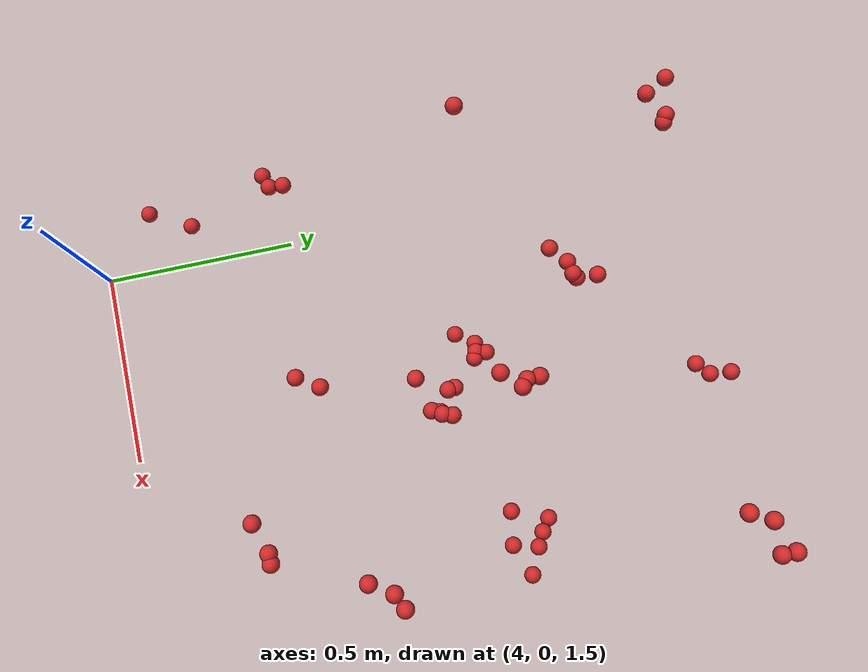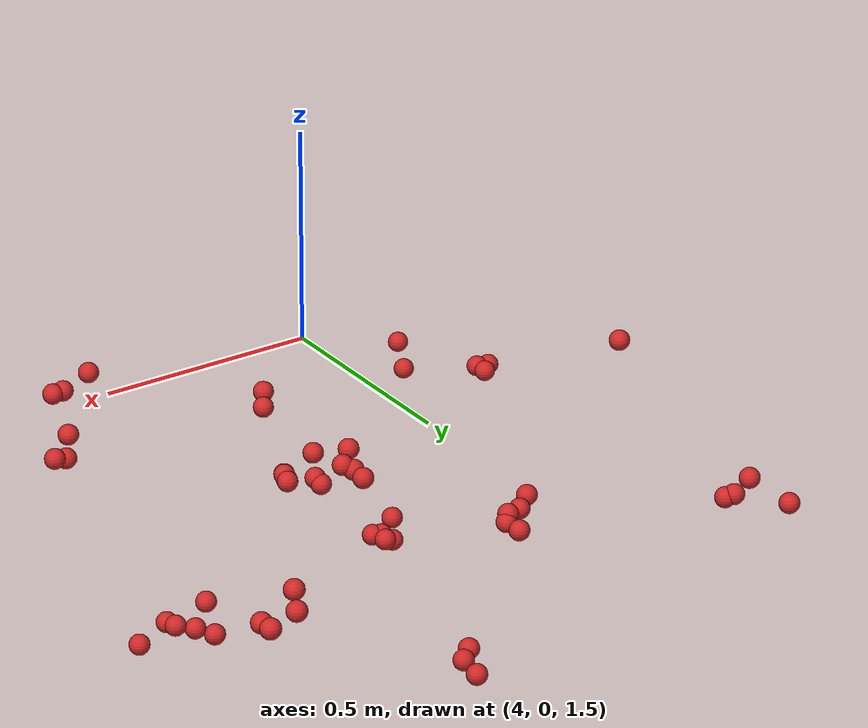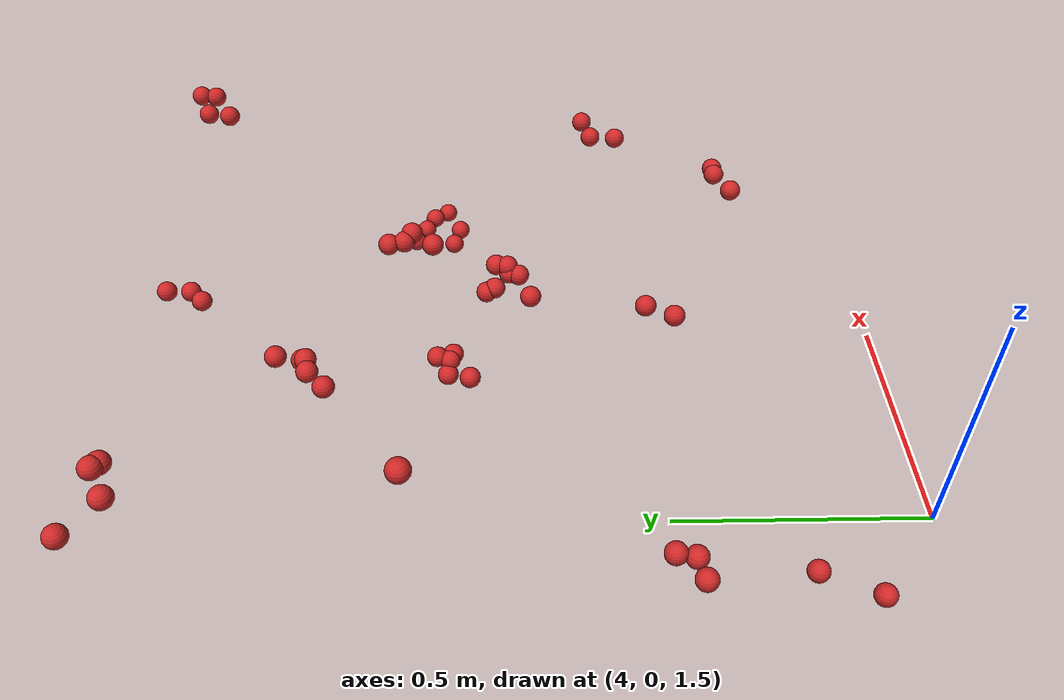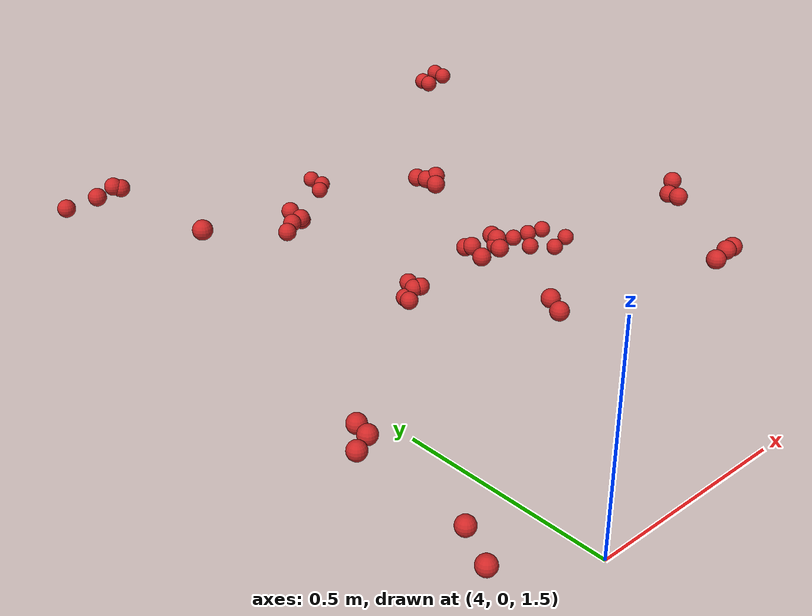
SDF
<sdf version="1.4">
 <model name="fruit_population">
  <static>true</static>
  <link name="fruit_5">
   <pose>4.9175140345496215 0.5460724903278867 1.7530366105542179 0 0 0</pose>
   <collision name="fruit_collision_5"><geometry><sphere><radius>0.022</radius></sphere></geometry></collision>
   <visual name="visual">
    <geometry><sphere><radius>0.022</radius></sphere></geometry>
    <material><script><name>Gazebo/Red</name></script></material>
   </visual>
   <inertial>
    <mass>0.05</mass>
    <inertia>
     <ixx>9.679999999999999e-06</ixx>
     <ixy>0.0</ixy>
     <ixz>0.0</ixz>
     <iyy>9.679999999999999e-06</iyy>
     <iyz>0.0</iyz>
     <izz>9.679999999999999e-06</izz>
    </inertia>
   </inertial>
   <sensor name="fruit_contact_5" type="contact">
    <plugin name="contact_plugin_5" filename="libcontact_plugin.so"/>
    <contact><collision>fruit_collision_5</collision><topic>fruit_contact_topic_5</topic></contact>
   </sensor>
  </link>
  <link name="fruit_13">
   <pose>4.391407774569537 0.4605093621108143 1.6700443243349659 0 0 0</pose>
   <collision name="fruit_collision_13"><geometry><sphere><radius>0.022</radius></sphere></geometry></collision>
   <visual name="visual">
    <geometry><sphere><radius>0.022</radius></sphere></geometry>
    <material><script><name>Gazebo/Red</name></script></material>
   </visual>
   <inertial>
    <mass>0.05</mass>
    <inertia>
     <ixx>9.679999999999999e-06</ixx>
     <ixy>0.0</ixy>
     <ixz>0.0</ixz>
     <iyy>9.679999999999999e-06</iyy>
     <iyz>0.0</iyz>
     <izz>9.679999999999999e-06</izz>
    </inertia>
   </inertial>
   <sensor name="fruit_contact_13" type="contact">
    <plugin name="contact_plugin_13" filename="libcontact_plugin.so"/>
    <contact><collision>fruit_collision_13</collision><topic>fruit_contact_topic_13</topic></contact>
   </sensor>
  </link>
  <link name="fruit_14">
   <pose>4.827572823549232 0.9287747765607425 1.5105740942526273 0 0 0</pose>
   <collision name="fruit_collision_14"><geometry><sphere><radius>0.022</radius></sphere></geometry></collision>
   <visual name="visual">
    <geometry><sphere><radius>0.022</radius></sphere></geometry>
    <material><script><name>Gazebo/Red</name></script></material>
   </visual>
   <inertial>
    <mass>0.05</mass>
    <inertia>
     <ixx>9.679999999999999e-06</ixx>
     <ixy>0.0</ixy>
     <ixz>0.0</ixz>
     <iyy>9.679999999999999e-06</iyy>
     <iyz>0.0</iyz>
     <izz>9.679999999999999e-06</izz>
    </inertia>
   </inertial>
   <sensor name="fruit_contact_14" type="contact">
    <plugin name="contact_plugin_14" filename="libcontact_plugin.so"/>
    <contact><collision>fruit_collision_14</collision><topic>fruit_contact_topic_14</topic></contact>
   </sensor>
  </link>
  <link name="fruit_63">
   <pose>3.8338963000977606 0.13286994146637737 1.5008435068806134 0 0 0</pose>
   <collision name="fruit_collision_63"><geometry><sphere><radius>0.022</radius></sphere></geometry></collision>
   <visual name="visual">
    <geometry><sphere><radius>0.022</radius></sphere></geometry>
    <material><script><name>Gazebo/Red</name></script></material>
   </visual>
   <inertial>
    <mass>0.05</mass>
    <inertia>
     <ixx>9.679999999999999e-06</ixx>
     <ixy>0.0</ixy>
     <ixz>0.0</ixz>
     <iyy>9.679999999999999e-06</iyy>
     <iyz>0.0</iyz>
     <izz>9.679999999999999e-06</izz>
    </inertia>
   </inertial>
   <sensor name="fruit_contact_63" type="contact">
    <plugin name="contact_plugin_63" filename="libcontact_plugin.so"/>
    <contact><collision>fruit_collision_63</collision><topic>fruit_contact_topic_63</topic></contact>
   </sensor>
  </link>
  <link name="fruit_86">
   <pose>4.345249558153454 0.8832277647257835 1.5414971296210556 0 0 0</pose>
   <collision name="fruit_collision_86"><geometry><sphere><radius>0.022</radius></sphere></geometry></collision>
   <visual name="visual">
    <geometry><sphere><radius>0.022</radius></sphere></geometry>
    <material><script><name>Gazebo/Red</name></script></material>
   </visual>
   <inertial>
    <mass>0.05</mass>
    <inertia>
     <ixx>9.679999999999999e-06</ixx>
     <ixy>0.0</ixy>
     <ixz>0.0</ixz>
     <iyy>9.679999999999999e-06</iyy>
     <iyz>0.0</iyz>
     <izz>9.679999999999999e-06</izz>
    </inertia>
   </inertial>
   <sensor name="fruit_contact_86" type="contact">
    <plugin name="contact_plugin_86" filename="libcontact_plugin.so"/>
    <contact><collision>fruit_collision_86</collision><topic>fruit_contact_topic_86</topic></contact>
   </sensor>
  </link>
  <link name="fruit_96">
   <pose>4.724370133889954 0.3021340279469043 1.7407680200212703 0 0 0</pose>
   <collision name="fruit_collision_96"><geometry><sphere><radius>0.022</radius></sphere></geometry></collision>
   <visual name="visual">
    <geometry><sphere><radius>0.022</radius></sphere></geometry>
    <material><script><name>Gazebo/Red</name></script></material>
   </visual>
   <inertial>
    <mass>0.05</mass>
    <inertia>
     <ixx>9.679999999999999e-06</ixx>
     <ixy>0.0</ixy>
     <ixz>0.0</ixz>
     <iyy>9.679999999999999e-06</iyy>
     <iyz>0.0</iyz>
     <izz>9.679999999999999e-06</izz>
    </inertia>
   </inertial>
   <sensor name="fruit_contact_96" type="contact">
    <plugin name="contact_plugin_96" filename="libcontact_plugin.so"/>
    <contact><collision>fruit_collision_96</collision><topic>fruit_contact_topic_96</topic></contact>
   </sensor>
  </link>
  <link name="fruit_101">
   <pose>4.914476520423644 0.9165296967716979 1.4843037438638262 0 0 0</pose>
   <collision name="fruit_collision_101"><geometry><sphere><radius>0.022</radius></sphere></geometry></collision>
   <visual name="visual">
    <geometry><sphere><radius>0.022</radius></sphere></geometry>
    <material><script><name>Gazebo/Red</name></script></material>
   </visual>
   <inertial>
    <mass>0.05</mass>
    <inertia>
     <ixx>9.679999999999999e-06</ixx>
     <ixy>0.0</ixy>
     <ixz>0.0</ixz>
     <iyy>9.679999999999999e-06</iyy>
     <iyz>0.0</iyz>
     <izz>9.679999999999999e-06</izz>
    </inertia>
   </inertial>
   <sensor name="fruit_contact_101" type="contact">
    <plugin name="contact_plugin_101" filename="libcontact_plugin.so"/>
    <contact><collision>fruit_collision_101</collision><topic>fruit_contact_topic_101</topic></contact>
   </sensor>
  </link>
  <link name="fruit_119">
   <pose>3.8739169402316347 1.4794689424429464 1.7565563880708526 0 0 0</pose>
   <collision name="fruit_collision_119"><geometry><sphere><radius>0.022</radius></sphere></geometry></collision>
   <visual name="visual">
    <geometry><sphere><radius>0.022</radius></sphere></geometry>
    <material><script><name>Gazebo/Red</name></script></material>
   </visual>
   <inertial>
    <mass>0.05</mass>
    <inertia>
     <ixx>9.679999999999999e-06</ixx>
     <ixy>0.0</ixy>
     <ixz>0.0</ixz>
     <iyy>9.679999999999999e-06</iyy>
     <iyz>0.0</iyz>
     <izz>9.679999999999999e-06</izz>
    </inertia>
   </inertial>
   <sensor name="fruit_contact_119" type="contact">
    <plugin name="contact_plugin_119" filename="libcontact_plugin.so"/>
    <contact><collision>fruit_collision_119</collision><topic>fruit_contact_topic_119</topic></contact>
   </sensor>
  </link>
  <link name="fruit_123">
   <pose>4.498810810534715 0.9556926644485079 1.7762469906194889 0 0 0</pose>
   <collision name="fruit_collision_123"><geometry><sphere><radius>0.022</radius></sphere></geometry></collision>
   <visual name="visual">
    <geometry><sphere><radius>0.022</radius></sphere></geometry>
    <material><script><name>Gazebo/Red</name></script></material>
   </visual>
   <inertial>
    <mass>0.05</mass>
    <inertia>
     <ixx>9.679999999999999e-06</ixx>
     <ixy>0.0</ixy>
     <ixz>0.0</ixz>
     <iyy>9.679999999999999e-06</iyy>
     <iyz>0.0</iyz>
     <izz>9.679999999999999e-06</izz>
    </inertia>
   </inertial>
   <sensor name="fruit_contact_123" type="contact">
    <plugin name="contact_plugin_123" filename="libcontact_plugin.so"/>
    <contact><collision>fruit_collision_123</collision><topic>fruit_contact_topic_123</topic></contact>
   </sensor>
  </link>
  <link name="fruit_151">
   <pose>4.198545134274258 1.1597362893789245 1.6725265654304458 0 0 0</pose>
   <collision name="fruit_collision_151"><geometry><sphere><radius>0.022</radius></sphere></geometry></collision>
   <visual name="visual">
    <geometry><sphere><radius>0.022</radius></sphere></geometry>
    <material><script><name>Gazebo/Red</name></script></material>
   </visual>
   <inertial>
    <mass>0.05</mass>
    <inertia>
     <ixx>9.679999999999999e-06</ixx>
     <ixy>0.0</ixy>
     <ixz>0.0</ixz>
     <iyy>9.679999999999999e-06</iyy>
     <iyz>0.0</iyz>
     <izz>9.679999999999999e-06</izz>
    </inertia>
   </inertial>
   <sensor name="fruit_contact_151" type="contact">
    <plugin name="contact_plugin_151" filename="libcontact_plugin.so"/>
    <contact><collision>fruit_collision_151</collision><topic>fruit_contact_topic_151</topic></contact>
   </sensor>
  </link>
  <link name="fruit_154">
   <pose>4.557632749590533 1.479290431854915 1.5740078937835995 0 0 0</pose>
   <collision name="fruit_collision_154"><geometry><sphere><radius>0.022</radius></sphere></geometry></collision>
   <visual name="visual">
    <geometry><sphere><radius>0.022</radius></sphere></geometry>
    <material><script><name>Gazebo/Red</name></script></material>
   </visual>
   <inertial>
    <mass>0.05</mass>
    <inertia>
     <ixx>9.679999999999999e-06</ixx>
     <ixy>0.0</ixy>
     <ixz>0.0</ixz>
     <iyy>9.679999999999999e-06</iyy>
     <iyz>0.0</iyz>
     <izz>9.679999999999999e-06</izz>
    </inertia>
   </inertial>
   <sensor name="fruit_contact_154" type="contact">
    <plugin name="contact_plugin_154" filename="libcontact_plugin.so"/>
    <contact><collision>fruit_collision_154</collision><topic>fruit_contact_topic_154</topic></contact>
   </sensor>
  </link>
  <link name="fruit_159">
   <pose>4.94200744214805 1.4440631104261654 1.8067380226999499 0 0 0</pose>
   <collision name="fruit_collision_159"><geometry><sphere><radius>0.022</radius></sphere></geometry></collision>
   <visual name="visual">
    <geometry><sphere><radius>0.022</radius></sphere></geometry>
    <material><script><name>Gazebo/Red</name></script></material>
   </visual>
   <inertial>
    <mass>0.05</mass>
    <inertia>
     <ixx>9.679999999999999e-06</ixx>
     <ixy>0.0</ixy>
     <ixz>0.0</ixz>
     <iyy>9.679999999999999e-06</iyy>
     <iyz>0.0</iyz>
     <izz>9.679999999999999e-06</izz>
    </inertia>
   </inertial>
   <sensor name="fruit_contact_159" type="contact">
    <plugin name="contact_plugin_159" filename="libcontact_plugin.so"/>
    <contact><collision>fruit_collision_159</collision><topic>fruit_contact_topic_159</topic></contact>
   </sensor>
  </link>
  <link name="fruit_168">
   <pose>4.456001888288945 0.7547430401069539 1.6688744361272267 0 0 0</pose>
   <collision name="fruit_collision_168"><geometry><sphere><radius>0.022</radius></sphere></geometry></collision>
   <visual name="visual">
    <geometry><sphere><radius>0.022</radius></sphere></geometry>
    <material><script><name>Gazebo/Red</name></script></material>
   </visual>
   <inertial>
    <mass>0.05</mass>
    <inertia>
     <ixx>9.679999999999999e-06</ixx>
     <ixy>0.0</ixy>
     <ixz>0.0</ixz>
     <iyy>9.679999999999999e-06</iyy>
     <iyz>0.0</iyz>
     <izz>9.679999999999999e-06</izz>
    </inertia>
   </inertial>
   <sensor name="fruit_contact_168" type="contact">
    <plugin name="contact_plugin_168" filename="libcontact_plugin.so"/>
    <contact><collision>fruit_collision_168</collision><topic>fruit_contact_topic_168</topic></contact>
   </sensor>
  </link>
  <link name="fruit_176">
   <pose>4.801152336235431 0.3265386984289699 1.729360404773539 0 0 0</pose>
   <collision name="fruit_collision_176"><geometry><sphere><radius>0.022</radius></sphere></geometry></collision>
   <visual name="visual">
    <geometry><sphere><radius>0.022</radius></sphere></geometry>
    <material><script><name>Gazebo/Red</name></script></material>
   </visual>
   <inertial>
    <mass>0.05</mass>
    <inertia>
     <ixx>9.679999999999999e-06</ixx>
     <ixy>0.0</ixy>
     <ixz>0.0</ixz>
     <iyy>9.679999999999999e-06</iyy>
     <iyz>0.0</iyz>
     <izz>9.679999999999999e-06</izz>
    </inertia>
   </inertial>
   <sensor name="fruit_contact_176" type="contact">
    <plugin name="contact_plugin_176" filename="libcontact_plugin.so"/>
    <contact><collision>fruit_collision_176</collision><topic>fruit_contact_topic_176</topic></contact>
   </sensor>
  </link>
  <link name="fruit_207">
   <pose>4.564656327713498 0.8266445705440222 1.664831885596611 0 0 0</pose>
   <collision name="fruit_collision_207"><geometry><sphere><radius>0.022</radius></sphere></geometry></collision>
   <visual name="visual">
    <geometry><sphere><radius>0.022</radius></sphere></geometry>
    <material><script><name>Gazebo/Red</name></script></material>
   </visual>
   <inertial>
    <mass>0.05</mass>
    <inertia>
     <ixx>9.679999999999999e-06</ixx>
     <ixy>0.0</ixy>
     <ixz>0.0</ixz>
     <iyy>9.679999999999999e-06</iyy>
     <iyz>0.0</iyz>
     <izz>9.679999999999999e-06</izz>
    </inertia>
   </inertial>
   <sensor name="fruit_contact_207" type="contact">
    <plugin name="contact_plugin_207" filename="libcontact_plugin.so"/>
    <contact><collision>fruit_collision_207</collision><topic>fruit_contact_topic_207</topic></contact>
   </sensor>
  </link>
  <link name="fruit_257">
   <pose>4.930513822189594 0.9786564791914516 1.5097289675746102 0 0 0</pose>
   <collision name="fruit_collision_257"><geometry><sphere><radius>0.022</radius></sphere></geometry></collision>
   <visual name="visual">
    <geometry><sphere><radius>0.022</radius></sphere></geometry>
    <material><script><name>Gazebo/Red</name></script></material>
   </visual>
   <inertial>
    <mass>0.05</mass>
    <inertia>
     <ixx>9.679999999999999e-06</ixx>
     <ixy>0.0</ixy>
     <ixz>0.0</ixz>
     <iyy>9.679999999999999e-06</iyy>
     <iyz>0.0</iyz>
     <izz>9.679999999999999e-06</izz>
    </inertia>
   </inertial>
   <sensor name="fruit_contact_257" type="contact">
    <plugin name="contact_plugin_257" filename="libcontact_plugin.so"/>
    <contact><collision>fruit_collision_257</collision><topic>fruit_contact_topic_257</topic></contact>
   </sensor>
  </link>
  <link name="fruit_286">
   <pose>4.542798397811309 1.0012543490657804 1.7718482637240656 0 0 0</pose>
   <collision name="fruit_collision_286"><geometry><sphere><radius>0.022</radius></sphere></geometry></collision>
   <visual name="visual">
    <geometry><sphere><radius>0.022</radius></sphere></geometry>
    <material><script><name>Gazebo/Red</name></script></material>
   </visual>
   <inertial>
    <mass>0.05</mass>
    <inertia>
     <ixx>9.679999999999999e-06</ixx>
     <ixy>0.0</ixy>
     <ixz>0.0</ixz>
     <iyy>9.679999999999999e-06</iyy>
     <iyz>0.0</iyz>
     <izz>9.679999999999999e-06</izz>
    </inertia>
   </inertial>
   <sensor name="fruit_contact_286" type="contact">
    <plugin name="contact_plugin_286" filename="libcontact_plugin.so"/>
    <contact><collision>fruit_collision_286</collision><topic>fruit_contact_topic_286</topic></contact>
   </sensor>
  </link>
  <link name="fruit_339">
   <pose>5.0516734548991 1.5318677267475913 1.7943146128504572 0 0 0</pose>
   <collision name="fruit_collision_339"><geometry><sphere><radius>0.022</radius></sphere></geometry></collision>
   <visual name="visual">
    <geometry><sphere><radius>0.022</radius></sphere></geometry>
    <material><script><name>Gazebo/Red</name></script></material>
   </visual>
   <inertial>
    <mass>0.05</mass>
    <inertia>
     <ixx>9.679999999999999e-06</ixx>
     <ixy>0.0</ixy>
     <ixz>0.0</ixz>
     <iyy>9.679999999999999e-06</iyy>
     <iyz>0.0</iyz>
     <izz>9.679999999999999e-06</izz>
    </inertia>
   </inertial>
   <sensor name="fruit_contact_339" type="contact">
    <plugin name="contact_plugin_339" filename="libcontact_plugin.so"/>
    <contact><collision>fruit_collision_339</collision><topic>fruit_contact_topic_339</topic></contact>
   </sensor>
  </link>
  <link name="fruit_370">
   <pose>3.8263668809183016 1.5515806662114497 1.7167841272086601 0 0 0</pose>
   <collision name="fruit_collision_370"><geometry><sphere><radius>0.022</radius></sphere></geometry></collision>
   <visual name="visual">
    <geometry><sphere><radius>0.022</radius></sphere></geometry>
    <material><script><name>Gazebo/Red</name></script></material>
   </visual>
   <inertial>
    <mass>0.05</mass>
    <inertia>
     <ixx>9.679999999999999e-06</ixx>
     <ixy>0.0</ixy>
     <ixz>0.0</ixz>
     <iyy>9.679999999999999e-06</iyy>
     <iyz>0.0</iyz>
     <izz>9.679999999999999e-06</izz>
    </inertia>
   </inertial>
   <sensor name="fruit_contact_370" type="contact">
    <plugin name="contact_plugin_370" filename="libcontact_plugin.so"/>
    <contact><collision>fruit_collision_370</collision><topic>fruit_contact_topic_370</topic></contact>
   </sensor>
  </link>
  <link name="fruit_374">
   <pose>4.590436823121306 1.5095857849829952 1.5726097535170982 0 0 0</pose>
   <collision name="fruit_collision_374"><geometry><sphere><radius>0.022</radius></sphere></geometry></collision>
   <visual name="visual">
    <geometry><sphere><radius>0.022</radius></sphere></geometry>
    <material><script><name>Gazebo/Red</name></script></material>
   </visual>
   <inertial>
    <mass>0.05</mass>
    <inertia>
     <ixx>9.679999999999999e-06</ixx>
     <ixy>0.0</ixy>
     <ixz>0.0</ixz>
     <iyy>9.679999999999999e-06</iyy>
     <iyz>0.0</iyz>
     <izz>9.679999999999999e-06</izz>
    </inertia>
   </inertial>
   <sensor name="fruit_contact_374" type="contact">
    <plugin name="contact_plugin_374" filename="libcontact_plugin.so"/>
    <contact><collision>fruit_collision_374</collision><topic>fruit_contact_topic_374</topic></contact>
   </sensor>
  </link>
  <link name="fruit_383">
   <pose>4.242203161322866 1.1968986689508048 1.6701665401859536 0 0 0</pose>
   <collision name="fruit_collision_383"><geometry><sphere><radius>0.022</radius></sphere></geometry></collision>
   <visual name="visual">
    <geometry><sphere><radius>0.022</radius></sphere></geometry>
    <material><script><name>Gazebo/Red</name></script></material>
   </visual>
   <inertial>
    <mass>0.05</mass>
    <inertia>
     <ixx>9.679999999999999e-06</ixx>
     <ixy>0.0</ixy>
     <ixz>0.0</ixz>
     <iyy>9.679999999999999e-06</iyy>
     <iyz>0.0</iyz>
     <izz>9.679999999999999e-06</izz>
    </inertia>
   </inertial>
   <sensor name="fruit_contact_383" type="contact">
    <plugin name="contact_plugin_383" filename="libcontact_plugin.so"/>
    <contact><collision>fruit_collision_383</collision><topic>fruit_contact_topic_383</topic></contact>
   </sensor>
  </link>
  <link name="fruit_403">
   <pose>4.408729804669254 0.9540817484631479 1.5406008929489587 0 0 0</pose>
   <collision name="fruit_collision_403"><geometry><sphere><radius>0.022</radius></sphere></geometry></collision>
   <visual name="visual">
    <geometry><sphere><radius>0.022</radius></sphere></geometry>
    <material><script><name>Gazebo/Red</name></script></material>
   </visual>
   <inertial>
    <mass>0.05</mass>
    <inertia>
     <ixx>9.679999999999999e-06</ixx>
     <ixy>0.0</ixy>
     <ixz>0.0</ixz>
     <iyy>9.679999999999999e-06</iyy>
     <iyz>0.0</iyz>
     <izz>9.679999999999999e-06</izz>
    </inertia>
   </inertial>
   <sensor name="fruit_contact_403" type="contact">
    <plugin name="contact_plugin_403" filename="libcontact_plugin.so"/>
    <contact><collision>fruit_collision_403</collision><topic>fruit_contact_topic_403</topic></contact>
   </sensor>
  </link>
  <link name="fruit_407">
   <pose>4.5421935241832 0.7779345522973404 1.6544944269541377 0 0 0</pose>
   <collision name="fruit_collision_407"><geometry><sphere><radius>0.022</radius></sphere></geometry></collision>
   <visual name="visual">
    <geometry><sphere><radius>0.022</radius></sphere></geometry>
    <material><script><name>Gazebo/Red</name></script></material>
   </visual>
   <inertial>
    <mass>0.05</mass>
    <inertia>
     <ixx>9.679999999999999e-06</ixx>
     <ixy>0.0</ixy>
     <ixz>0.0</ixz>
     <iyy>9.679999999999999e-06</iyy>
     <iyz>0.0</iyz>
     <izz>9.679999999999999e-06</izz>
    </inertia>
   </inertial>
   <sensor name="fruit_contact_407" type="contact">
    <plugin name="contact_plugin_407" filename="libcontact_plugin.so"/>
    <contact><collision>fruit_collision_407</collision><topic>fruit_contact_topic_407</topic></contact>
   </sensor>
  </link>
  <link name="fruit_427">
   <pose>4.418063739589942 0.920051926301874 1.5391950012069484 0 0 0</pose>
   <collision name="fruit_collision_427"><geometry><sphere><radius>0.022</radius></sphere></geometry></collision>
   <visual name="visual">
    <geometry><sphere><radius>0.022</radius></sphere></geometry>
    <material><script><name>Gazebo/Red</name></script></material>
   </visual>
   <inertial>
    <mass>0.05</mass>
    <inertia>
     <ixx>9.679999999999999e-06</ixx>
     <ixy>0.0</ixy>
     <ixz>0.0</ixz>
     <iyy>9.679999999999999e-06</iyy>
     <iyz>0.0</iyz>
     <izz>9.679999999999999e-06</izz>
    </inertia>
   </inertial>
   <sensor name="fruit_contact_427" type="contact">
    <plugin name="contact_plugin_427" filename="libcontact_plugin.so"/>
    <contact><collision>fruit_collision_427</collision><topic>fruit_contact_topic_427</topic></contact>
   </sensor>
  </link>
  <link name="fruit_449">
   <pose>4.597024398743116 1.5658391495062645 1.5684615090157306 0 0 0</pose>
   <collision name="fruit_collision_449"><geometry><sphere><radius>0.022</radius></sphere></geometry></collision>
   <visual name="visual">
    <geometry><sphere><radius>0.022</radius></sphere></geometry>
    <material><script><name>Gazebo/Red</name></script></material>
   </visual>
   <inertial>
    <mass>0.05</mass>
    <inertia>
     <ixx>9.679999999999999e-06</ixx>
     <ixy>0.0</ixy>
     <ixz>0.0</ixz>
     <iyy>9.679999999999999e-06</iyy>
     <iyz>0.0</iyz>
     <izz>9.679999999999999e-06</izz>
    </inertia>
   </inertial>
   <sensor name="fruit_contact_449" type="contact">
    <plugin name="contact_plugin_449" filename="libcontact_plugin.so"/>
    <contact><collision>fruit_collision_449</collision><topic>fruit_contact_topic_449</topic></contact>
   </sensor>
  </link>
  <link name="fruit_457">
   <pose>3.8897010976925865 0.240075461037063 1.494970935928948 0 0 0</pose>
   <collision name="fruit_collision_457"><geometry><sphere><radius>0.022</radius></sphere></geometry></collision>
   <visual name="visual">
    <geometry><sphere><radius>0.022</radius></sphere></geometry>
    <material><script><name>Gazebo/Red</name></script></material>
   </visual>
   <inertial>
    <mass>0.05</mass>
    <inertia>
     <ixx>9.679999999999999e-06</ixx>
     <ixy>0.0</ixy>
     <ixz>0.0</ixz>
     <iyy>9.679999999999999e-06</iyy>
     <iyz>0.0</iyz>
     <izz>9.679999999999999e-06</izz>
    </inertia>
   </inertial>
   <sensor name="fruit_contact_457" type="contact">
    <plugin name="contact_plugin_457" filename="libcontact_plugin.so"/>
    <contact><collision>fruit_collision_457</collision><topic>fruit_contact_topic_457</topic></contact>
   </sensor>
  </link>
  <link name="fruit_461">
   <pose>3.9547602480375215 1.506455825027388 1.747847145964728 0 0 0</pose>
   <collision name="fruit_collision_461"><geometry><sphere><radius>0.022</radius></sphere></geometry></collision>
   <visual name="visual">
    <geometry><sphere><radius>0.022</radius></sphere></geometry>
    <material><script><name>Gazebo/Red</name></script></material>
   </visual>
   <inertial>
    <mass>0.05</mass>
    <inertia>
     <ixx>9.679999999999999e-06</ixx>
     <ixy>0.0</ixy>
     <ixz>0.0</ixz>
     <iyy>9.679999999999999e-06</iyy>
     <iyz>0.0</iyz>
     <izz>9.679999999999999e-06</izz>
    </inertia>
   </inertial>
   <sensor name="fruit_contact_461" type="contact">
    <plugin name="contact_plugin_461" filename="libcontact_plugin.so"/>
    <contact><collision>fruit_collision_461</collision><topic>fruit_contact_topic_461</topic></contact>
   </sensor>
  </link>
  <link name="fruit_486">
   <pose>4.86485637003119 1.022369471250589 1.4896008926270656 0 0 0</pose>
   <collision name="fruit_collision_486"><geometry><sphere><radius>0.022</radius></sphere></geometry></collision>
   <visual name="visual">
    <geometry><sphere><radius>0.022</radius></sphere></geometry>
    <material><script><name>Gazebo/Red</name></script></material>
   </visual>
   <inertial>
    <mass>0.05</mass>
    <inertia>
     <ixx>9.679999999999999e-06</ixx>
     <ixy>0.0</ixy>
     <ixz>0.0</ixz>
     <iyy>9.679999999999999e-06</iyy>
     <iyz>0.0</iyz>
     <izz>9.679999999999999e-06</izz>
    </inertia>
   </inertial>
   <sensor name="fruit_contact_486" type="contact">
    <plugin name="contact_plugin_486" filename="libcontact_plugin.so"/>
    <contact><collision>fruit_collision_486</collision><topic>fruit_contact_topic_486</topic></contact>
   </sensor>
  </link>
  <link name="fruit_489">
   <pose>4.549422135977554 0.7984024732077736 1.653360299368445 0 0 0</pose>
   <collision name="fruit_collision_489"><geometry><sphere><radius>0.022</radius></sphere></geometry></collision>
   <visual name="visual">
    <geometry><sphere><radius>0.022</radius></sphere></geometry>
    <material><script><name>Gazebo/Red</name></script></material>
   </visual>
   <inertial>
    <mass>0.05</mass>
    <inertia>
     <ixx>9.679999999999999e-06</ixx>
     <ixy>0.0</ixy>
     <ixz>0.0</ixz>
     <iyy>9.679999999999999e-06</iyy>
     <iyz>0.0</iyz>
     <izz>9.679999999999999e-06</izz>
    </inertia>
   </inertial>
   <sensor name="fruit_contact_489" type="contact">
    <plugin name="contact_plugin_489" filename="libcontact_plugin.so"/>
    <contact><collision>fruit_collision_489</collision><topic>fruit_contact_topic_489</topic></contact>
   </sensor>
  </link>
  <link name="fruit_505">
   <pose>4.999190142178149 0.949992587215054 1.4738046979872896 0 0 0</pose>
   <collision name="fruit_collision_505"><geometry><sphere><radius>0.022</radius></sphere></geometry></collision>
   <visual name="visual">
    <geometry><sphere><radius>0.022</radius></sphere></geometry>
    <material><script><name>Gazebo/Red</name></script></material>
   </visual>
   <inertial>
    <mass>0.05</mass>
    <inertia>
     <ixx>9.679999999999999e-06</ixx>
     <ixy>0.0</ixy>
     <ixz>0.0</ixz>
     <iyy>9.679999999999999e-06</iyy>
     <iyz>0.0</iyz>
     <izz>9.679999999999999e-06</izz>
    </inertia>
   </inertial>
   <sensor name="fruit_contact_505" type="contact">
    <plugin name="contact_plugin_505" filename="libcontact_plugin.so"/>
    <contact><collision>fruit_collision_505</collision><topic>fruit_contact_topic_505</topic></contact>
   </sensor>
  </link>
  <link name="fruit_536">
   <pose>4.896123303583096 0.9983697589916298 1.5017792891898114 0 0 0</pose>
   <collision name="fruit_collision_536"><geometry><sphere><radius>0.022</radius></sphere></geometry></collision>
   <visual name="visual">
    <geometry><sphere><radius>0.022</radius></sphere></geometry>
    <material><script><name>Gazebo/Red</name></script></material>
   </visual>
   <inertial>
    <mass>0.05</mass>
    <inertia>
     <ixx>9.679999999999999e-06</ixx>
     <ixy>0.0</ixy>
     <ixz>0.0</ixz>
     <iyy>9.679999999999999e-06</iyy>
     <iyz>0.0</iyz>
     <izz>9.679999999999999e-06</izz>
    </inertia>
   </inertial>
   <sensor name="fruit_contact_536" type="contact">
    <plugin name="contact_plugin_536" filename="libcontact_plugin.so"/>
    <contact><collision>fruit_collision_536</collision><topic>fruit_contact_topic_536</topic></contact>
   </sensor>
  </link>
  <link name="fruit_538">
   <pose>3.81932581755692 0.4649660626947253 1.5784809639888877 0 0 0</pose>
   <collision name="fruit_collision_538"><geometry><sphere><radius>0.022</radius></sphere></geometry></collision>
   <visual name="visual">
    <geometry><sphere><radius>0.022</radius></sphere></geometry>
    <material><script><name>Gazebo/Red</name></script></material>
   </visual>
   <inertial>
    <mass>0.05</mass>
    <inertia>
     <ixx>9.679999999999999e-06</ixx>
     <ixy>0.0</ixy>
     <ixz>0.0</ixz>
     <iyy>9.679999999999999e-06</iyy>
     <iyz>0.0</iyz>
     <izz>9.679999999999999e-06</izz>
    </inertia>
   </inertial>
   <sensor name="fruit_contact_538" type="contact">
    <plugin name="contact_plugin_538" filename="libcontact_plugin.so"/>
    <contact><collision>fruit_collision_538</collision><topic>fruit_contact_topic_538</topic></contact>
   </sensor>
  </link>
  <link name="fruit_542">
   <pose>4.524503100032919 1.0491541817533605 1.7573208547240873 0 0 0</pose>
   <collision name="fruit_collision_542"><geometry><sphere><radius>0.022</radius></sphere></geometry></collision>
   <visual name="visual">
    <geometry><sphere><radius>0.022</radius></sphere></geometry>
    <material><script><name>Gazebo/Red</name></script></material>
   </visual>
   <inertial>
    <mass>0.05</mass>
    <inertia>
     <ixx>9.679999999999999e-06</ixx>
     <ixy>0.0</ixy>
     <ixz>0.0</ixz>
     <iyy>9.679999999999999e-06</iyy>
     <iyz>0.0</iyz>
     <izz>9.679999999999999e-06</izz>
    </inertia>
   </inertial>
   <sensor name="fruit_contact_542" type="contact">
    <plugin name="contact_plugin_542" filename="libcontact_plugin.so"/>
    <contact><collision>fruit_collision_542</collision><topic>fruit_contact_topic_542</topic></contact>
   </sensor>
  </link>
  <link name="fruit_551">
   <pose>5.050902278120869 1.4977015486500282 1.791651813676516 0 0 0</pose>
   <collision name="fruit_collision_551"><geometry><sphere><radius>0.022</radius></sphere></geometry></collision>
   <visual name="visual">
    <geometry><sphere><radius>0.022</radius></sphere></geometry>
    <material><script><name>Gazebo/Red</name></script></material>
   </visual>
   <inertial>
    <mass>0.05</mass>
    <inertia>
     <ixx>9.679999999999999e-06</ixx>
     <ixy>0.0</ixy>
     <ixz>0.0</ixz>
     <iyy>9.679999999999999e-06</iyy>
     <iyz>0.0</iyz>
     <izz>9.679999999999999e-06</izz>
    </inertia>
   </inertial>
   <sensor name="fruit_contact_551" type="contact">
    <plugin name="contact_plugin_551" filename="libcontact_plugin.so"/>
    <contact><collision>fruit_collision_551</collision><topic>fruit_contact_topic_551</topic></contact>
   </sensor>
  </link>
  <link name="fruit_594">
   <pose>4.992588378242435 0.6189355697973578 1.7500790598221692 0 0 0</pose>
   <collision name="fruit_collision_594"><geometry><sphere><radius>0.022</radius></sphere></geometry></collision>
   <visual name="visual">
    <geometry><sphere><radius>0.022</radius></sphere></geometry>
    <material><script><name>Gazebo/Red</name></script></material>
   </visual>
   <inertial>
    <mass>0.05</mass>
    <inertia>
     <ixx>9.679999999999999e-06</ixx>
     <ixy>0.0</ixy>
     <ixz>0.0</ixz>
     <iyy>9.679999999999999e-06</iyy>
     <iyz>0.0</iyz>
     <izz>9.679999999999999e-06</izz>
    </inertia>
   </inertial>
   <sensor name="fruit_contact_594" type="contact">
    <plugin name="contact_plugin_594" filename="libcontact_plugin.so"/>
    <contact><collision>fruit_collision_594</collision><topic>fruit_contact_topic_594</topic></contact>
   </sensor>
  </link>
  <link name="fruit_597">
   <pose>4.42673259377101 0.5160003696388188 1.6660475274727196 0 0 0</pose>
   <collision name="fruit_collision_597"><geometry><sphere><radius>0.022</radius></sphere></geometry></collision>
   <visual name="visual">
    <geometry><sphere><radius>0.022</radius></sphere></geometry>
    <material><script><name>Gazebo/Red</name></script></material>
   </visual>
   <inertial>
    <mass>0.05</mass>
    <inertia>
     <ixx>9.679999999999999e-06</ixx>
     <ixy>0.0</ixy>
     <ixz>0.0</ixz>
     <iyy>9.679999999999999e-06</iyy>
     <iyz>0.0</iyz>
     <izz>9.679999999999999e-06</izz>
    </inertia>
   </inertial>
   <sensor name="fruit_contact_597" type="contact">
    <plugin name="contact_plugin_597" filename="libcontact_plugin.so"/>
    <contact><collision>fruit_collision_597</collision><topic>fruit_contact_topic_597</topic></contact>
   </sensor>
  </link>
  <link name="fruit_621">
   <pose>3.8625265878599966 0.5152107773313843 1.595770609466726 0 0 0</pose>
   <collision name="fruit_collision_621"><geometry><sphere><radius>0.022</radius></sphere></geometry></collision>
   <visual name="visual">
    <geometry><sphere><radius>0.022</radius></sphere></geometry>
    <material><script><name>Gazebo/Red</name></script></material>
   </visual>
   <inertial>
    <mass>0.05</mass>
    <inertia>
     <ixx>9.679999999999999e-06</ixx>
     <ixy>0.0</ixy>
     <ixz>0.0</ixz>
     <iyy>9.679999999999999e-06</iyy>
     <iyz>0.0</iyz>
     <izz>9.679999999999999e-06</izz>
    </inertia>
   </inertial>
   <sensor name="fruit_contact_621" type="contact">
    <plugin name="contact_plugin_621" filename="libcontact_plugin.so"/>
    <contact><collision>fruit_collision_621</collision><topic>fruit_contact_topic_621</topic></contact>
   </sensor>
  </link>
  <link name="fruit_637">
   <pose>4.499202793756178 0.8294510356193604 1.6554636261522906 0 0 0</pose>
   <collision name="fruit_collision_637"><geometry><sphere><radius>0.022</radius></sphere></geometry></collision>
   <visual name="visual">
    <geometry><sphere><radius>0.022</radius></sphere></geometry>
    <material><script><name>Gazebo/Red</name></script></material>
   </visual>
   <inertial>
    <mass>0.05</mass>
    <inertia>
     <ixx>9.679999999999999e-06</ixx>
     <ixy>0.0</ixy>
     <ixz>0.0</ixz>
     <iyy>9.679999999999999e-06</iyy>
     <iyz>0.0</iyz>
     <izz>9.679999999999999e-06</izz>
    </inertia>
   </inertial>
   <sensor name="fruit_contact_637" type="contact">
    <plugin name="contact_plugin_637" filename="libcontact_plugin.so"/>
    <contact><collision>fruit_collision_637</collision><topic>fruit_contact_topic_637</topic></contact>
   </sensor>
  </link>
  <link name="fruit_645">
   <pose>3.9388203312856467 1.5150080364722904 1.7539716784523214 0 0 0</pose>
   <collision name="fruit_collision_645"><geometry><sphere><radius>0.022</radius></sphere></geometry></collision>
   <visual name="visual">
    <geometry><sphere><radius>0.022</radius></sphere></geometry>
    <material><script><name>Gazebo/Red</name></script></material>
   </visual>
   <inertial>
    <mass>0.05</mass>
    <inertia>
     <ixx>9.679999999999999e-06</ixx>
     <ixy>0.0</ixy>
     <ixz>0.0</ixz>
     <iyy>9.679999999999999e-06</iyy>
     <iyz>0.0</iyz>
     <izz>9.679999999999999e-06</izz>
    </inertia>
   </inertial>
   <sensor name="fruit_contact_645" type="contact">
    <plugin name="contact_plugin_645" filename="libcontact_plugin.so"/>
    <contact><collision>fruit_collision_645</collision><topic>fruit_contact_topic_645</topic></contact>
   </sensor>
  </link>
  <link name="fruit_656">
   <pose>4.28523636020809 1.2128370081711244 1.6587840991836085 0 0 0</pose>
   <collision name="fruit_collision_656"><geometry><sphere><radius>0.022</radius></sphere></geometry></collision>
   <visual name="visual">
    <geometry><sphere><radius>0.022</radius></sphere></geometry>
    <material><script><name>Gazebo/Red</name></script></material>
   </visual>
   <inertial>
    <mass>0.05</mass>
    <inertia>
     <ixx>9.679999999999999e-06</ixx>
     <ixy>0.0</ixy>
     <ixz>0.0</ixz>
     <iyy>9.679999999999999e-06</iyy>
     <iyz>0.0</iyz>
     <izz>9.679999999999999e-06</izz>
    </inertia>
   </inertial>
   <sensor name="fruit_contact_656" type="contact">
    <plugin name="contact_plugin_656" filename="libcontact_plugin.so"/>
    <contact><collision>fruit_collision_656</collision><topic>fruit_contact_topic_656</topic></contact>
   </sensor>
  </link>
  <link name="fruit_680">
   <pose>4.275283734920455 1.2039183971791125 1.6708201769098605 0 0 0</pose>
   <collision name="fruit_collision_680"><geometry><sphere><radius>0.022</radius></sphere></geometry></collision>
   <visual name="visual">
    <geometry><sphere><radius>0.022</radius></sphere></geometry>
    <material><script><name>Gazebo/Red</name></script></material>
   </visual>
   <inertial>
    <mass>0.05</mass>
    <inertia>
     <ixx>9.679999999999999e-06</ixx>
     <ixy>0.0</ixy>
     <ixz>0.0</ixz>
     <iyy>9.679999999999999e-06</iyy>
     <iyz>0.0</iyz>
     <izz>9.679999999999999e-06</izz>
    </inertia>
   </inertial>
   <sensor name="fruit_contact_680" type="contact">
    <plugin name="contact_plugin_680" filename="libcontact_plugin.so"/>
    <contact><collision>fruit_collision_680</collision><topic>fruit_contact_topic_680</topic></contact>
   </sensor>
  </link>
  <link name="fruit_721">
   <pose>4.825823223299921 0.327206936159189 1.7290214551093992 0 0 0</pose>
   <collision name="fruit_collision_721"><geometry><sphere><radius>0.022</radius></sphere></geometry></collision>
   <visual name="visual">
    <geometry><sphere><radius>0.022</radius></sphere></geometry>
    <material><script><name>Gazebo/Red</name></script></material>
   </visual>
   <inertial>
    <mass>0.05</mass>
    <inertia>
     <ixx>9.679999999999999e-06</ixx>
     <ixy>0.0</ixy>
     <ixz>0.0</ixz>
     <iyy>9.679999999999999e-06</iyy>
     <iyz>0.0</iyz>
     <izz>9.679999999999999e-06</izz>
    </inertia>
   </inertial>
   <sensor name="fruit_contact_721" type="contact">
    <plugin name="contact_plugin_721" filename="libcontact_plugin.so"/>
    <contact><collision>fruit_collision_721</collision><topic>fruit_contact_topic_721</topic></contact>
   </sensor>
  </link>
  <link name="fruit_724">
   <pose>4.556909064197519 0.8021269679106651 1.6676210601494355 0 0 0</pose>
   <collision name="fruit_collision_724"><geometry><sphere><radius>0.022</radius></sphere></geometry></collision>
   <visual name="visual">
    <geometry><sphere><radius>0.022</radius></sphere></geometry>
    <material><script><name>Gazebo/Red</name></script></material>
   </visual>
   <inertial>
    <mass>0.05</mass>
    <inertia>
     <ixx>9.679999999999999e-06</ixx>
     <ixy>0.0</ixy>
     <ixz>0.0</ixz>
     <iyy>9.679999999999999e-06</iyy>
     <iyz>0.0</iyz>
     <izz>9.679999999999999e-06</izz>
    </inertia>
   </inertial>
   <sensor name="fruit_contact_724" type="contact">
    <plugin name="contact_plugin_724" filename="libcontact_plugin.so"/>
    <contact><collision>fruit_collision_724</collision><topic>fruit_contact_topic_724</topic></contact>
   </sensor>
  </link>
  <link name="fruit_726">
   <pose>4.289953953324612 1.2656261203891153 1.664656566640296 0 0 0</pose>
   <collision name="fruit_collision_726"><geometry><sphere><radius>0.022</radius></sphere></geometry></collision>
   <visual name="visual">
    <geometry><sphere><radius>0.022</radius></sphere></geometry>
    <material><script><name>Gazebo/Red</name></script></material>
   </visual>
   <inertial>
    <mass>0.05</mass>
    <inertia>
     <ixx>9.679999999999999e-06</ixx>
     <ixy>0.0</ixy>
     <ixz>0.0</ixz>
     <iyy>9.679999999999999e-06</iyy>
     <iyz>0.0</iyz>
     <izz>9.679999999999999e-06</izz>
    </inertia>
   </inertial>
   <sensor name="fruit_contact_726" type="contact">
    <plugin name="contact_plugin_726" filename="libcontact_plugin.so"/>
    <contact><collision>fruit_collision_726</collision><topic>fruit_contact_topic_726</topic></contact>
   </sensor>
  </link>
  <link name="fruit_735">
   <pose>4.375627870614839 0.9309197618378408 1.5196559377221641 0 0 0</pose>
   <collision name="fruit_collision_735"><geometry><sphere><radius>0.022</radius></sphere></geometry></collision>
   <visual name="visual">
    <geometry><sphere><radius>0.022</radius></sphere></geometry>
    <material><script><name>Gazebo/Red</name></script></material>
   </visual>
   <inertial>
    <mass>0.05</mass>
    <inertia>
     <ixx>9.679999999999999e-06</ixx>
     <ixy>0.0</ixy>
     <ixz>0.0</ixz>
     <iyy>9.679999999999999e-06</iyy>
     <iyz>0.0</iyz>
     <izz>9.679999999999999e-06</izz>
    </inertia>
   </inertial>
   <sensor name="fruit_contact_735" type="contact">
    <plugin name="contact_plugin_735" filename="libcontact_plugin.so"/>
    <contact><collision>fruit_collision_735</collision><topic>fruit_contact_topic_735</topic></contact>
   </sensor>
  </link>
  <link name="fruit_743">
   <pose>3.8579592261558084 0.47791787659380464 1.5907260835489392 0 0 0</pose>
   <collision name="fruit_collision_743"><geometry><sphere><radius>0.022</radius></sphere></geometry></collision>
   <visual name="visual">
    <geometry><sphere><radius>0.022</radius></sphere></geometry>
    <material><script><name>Gazebo/Red</name></script></material>
   </visual>
   <inertial>
    <mass>0.05</mass>
    <inertia>
     <ixx>9.679999999999999e-06</ixx>
     <ixy>0.0</ixy>
     <ixz>0.0</ixz>
     <iyy>9.679999999999999e-06</iyy>
     <iyz>0.0</iyz>
     <izz>9.679999999999999e-06</izz>
    </inertia>
   </inertial>
   <sensor name="fruit_contact_743" type="contact">
    <plugin name="contact_plugin_743" filename="libcontact_plugin.so"/>
    <contact><collision>fruit_collision_743</collision><topic>fruit_contact_topic_743</topic></contact>
   </sensor>
  </link>
  <link name="fruit_750">
   <pose>4.971537119376548 1.499755578422741 1.7937520780250267 0 0 0</pose>
   <collision name="fruit_collision_750"><geometry><sphere><radius>0.022</radius></sphere></geometry></collision>
   <visual name="visual">
    <geometry><sphere><radius>0.022</radius></sphere></geometry>
    <material><script><name>Gazebo/Red</name></script></material>
   </visual>
   <inertial>
    <mass>0.05</mass>
    <inertia>
     <ixx>9.679999999999999e-06</ixx>
     <ixy>0.0</ixy>
     <ixz>0.0</ixz>
     <iyy>9.679999999999999e-06</iyy>
     <iyz>0.0</iyz>
     <izz>9.679999999999999e-06</izz>
    </inertia>
   </inertial>
   <sensor name="fruit_contact_750" type="contact">
    <plugin name="contact_plugin_750" filename="libcontact_plugin.so"/>
    <contact><collision>fruit_collision_750</collision><topic>fruit_contact_topic_750</topic></contact>
   </sensor>
  </link>
  <link name="fruit_766">
   <pose>3.843818443171152 0.9818516750072703 1.8545806322010585 0 0 0</pose>
   <collision name="fruit_collision_766"><geometry><sphere><radius>0.022</radius></sphere></geometry></collision>
   <visual name="visual">
    <geometry><sphere><radius>0.022</radius></sphere></geometry>
    <material><script><name>Gazebo/Red</name></script></material>
   </visual>
   <inertial>
    <mass>0.05</mass>
    <inertia>
     <ixx>9.679999999999999e-06</ixx>
     <ixy>0.0</ixy>
     <ixz>0.0</ixz>
     <iyy>9.679999999999999e-06</iyy>
     <iyz>0.0</iyz>
     <izz>9.679999999999999e-06</izz>
    </inertia>
   </inertial>
   <sensor name="fruit_contact_766" type="contact">
    <plugin name="contact_plugin_766" filename="libcontact_plugin.so"/>
    <contact><collision>fruit_collision_766</collision><topic>fruit_contact_topic_766</topic></contact>
   </sensor>
  </link>
  <link name="fruit_792">
   <pose>4.526251903297445 1.0164851970590254 1.7628572307918124 0 0 0</pose>
   <collision name="fruit_collision_792"><geometry><sphere><radius>0.022</radius></sphere></geometry></collision>
   <visual name="visual">
    <geometry><sphere><radius>0.022</radius></sphere></geometry>
    <material><script><name>Gazebo/Red</name></script></material>
   </visual>
   <inertial>
    <mass>0.05</mass>
    <inertia>
     <ixx>9.679999999999999e-06</ixx>
     <ixy>0.0</ixy>
     <ixz>0.0</ixz>
     <iyy>9.679999999999999e-06</iyy>
     <iyz>0.0</iyz>
     <izz>9.679999999999999e-06</izz>
    </inertia>
   </inertial>
   <sensor name="fruit_contact_792" type="contact">
    <plugin name="contact_plugin_792" filename="libcontact_plugin.so"/>
    <contact><collision>fruit_collision_792</collision><topic>fruit_contact_topic_792</topic></contact>
   </sensor>
  </link>
  <link name="fruit_796">
   <pose>4.954636727792206 0.6000640960422813 1.7322410183699084 0 0 0</pose>
   <collision name="fruit_collision_796"><geometry><sphere><radius>0.022</radius></sphere></geometry></collision>
   <visual name="visual">
    <geometry><sphere><radius>0.022</radius></sphere></geometry>
    <material><script><name>Gazebo/Red</name></script></material>
   </visual>
   <inertial>
    <mass>0.05</mass>
    <inertia>
     <ixx>9.679999999999999e-06</ixx>
     <ixy>0.0</ixy>
     <ixz>0.0</ixz>
     <iyy>9.679999999999999e-06</iyy>
     <iyz>0.0</iyz>
     <izz>9.679999999999999e-06</izz>
    </inertia>
   </inertial>
   <sensor name="fruit_contact_796" type="contact">
    <plugin name="contact_plugin_796" filename="libcontact_plugin.so"/>
    <contact><collision>fruit_collision_796</collision><topic>fruit_contact_topic_796</topic></contact>
   </sensor>
  </link>
  <link name="fruit_814">
   <pose>4.400852386314951 0.9266107774054367 1.5382749206986193 0 0 0</pose>
   <collision name="fruit_collision_814"><geometry><sphere><radius>0.022</radius></sphere></geometry></collision>
   <visual name="visual">
    <geometry><sphere><radius>0.022</radius></sphere></geometry>
    <material><script><name>Gazebo/Red</name></script></material>
   </visual>
   <inertial>
    <mass>0.05</mass>
    <inertia>
     <ixx>9.679999999999999e-06</ixx>
     <ixy>0.0</ixy>
     <ixz>0.0</ixz>
     <iyy>9.679999999999999e-06</iyy>
     <iyz>0.0</iyz>
     <izz>9.679999999999999e-06</izz>
    </inertia>
   </inertial>
   <sensor name="fruit_contact_814" type="contact">
    <plugin name="contact_plugin_814" filename="libcontact_plugin.so"/>
    <contact><collision>fruit_collision_814</collision><topic>fruit_contact_topic_814</topic></contact>
   </sensor>
  </link>
  <link name="fruit_820">
   <pose>4.495930955440668 0.8470217587499314 1.6473907009492148 0 0 0</pose>
   <collision name="fruit_collision_820"><geometry><sphere><radius>0.022</radius></sphere></geometry></collision>
   <visual name="visual">
    <geometry><sphere><radius>0.022</radius></sphere></geometry>
    <material><script><name>Gazebo/Red</name></script></material>
   </visual>
   <inertial>
    <mass>0.05</mass>
    <inertia>
     <ixx>9.679999999999999e-06</ixx>
     <ixy>0.0</ixy>
     <ixz>0.0</ixz>
     <iyy>9.679999999999999e-06</iyy>
     <iyz>0.0</iyz>
     <izz>9.679999999999999e-06</izz>
    </inertia>
   </inertial>
   <sensor name="fruit_contact_820" type="contact">
    <plugin name="contact_plugin_820" filename="libcontact_plugin.so"/>
    <contact><collision>fruit_collision_820</collision><topic>fruit_contact_topic_820</topic></contact>
   </sensor>
  </link>
 </model>
</sdf>
